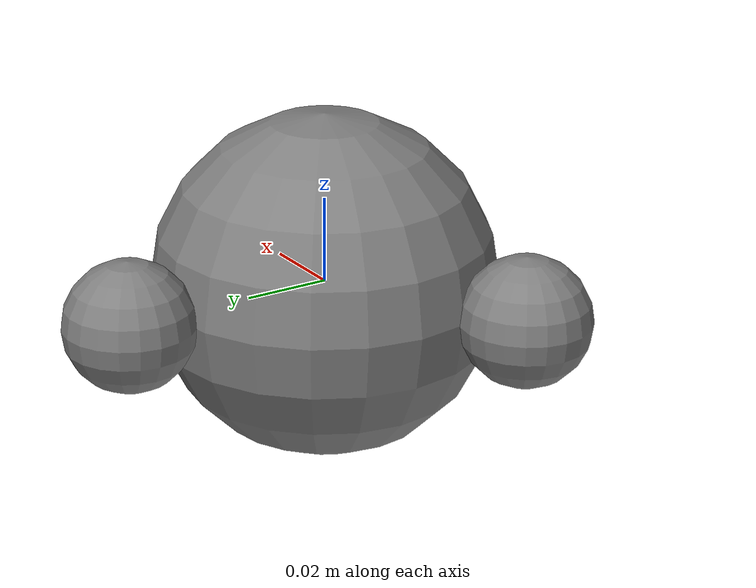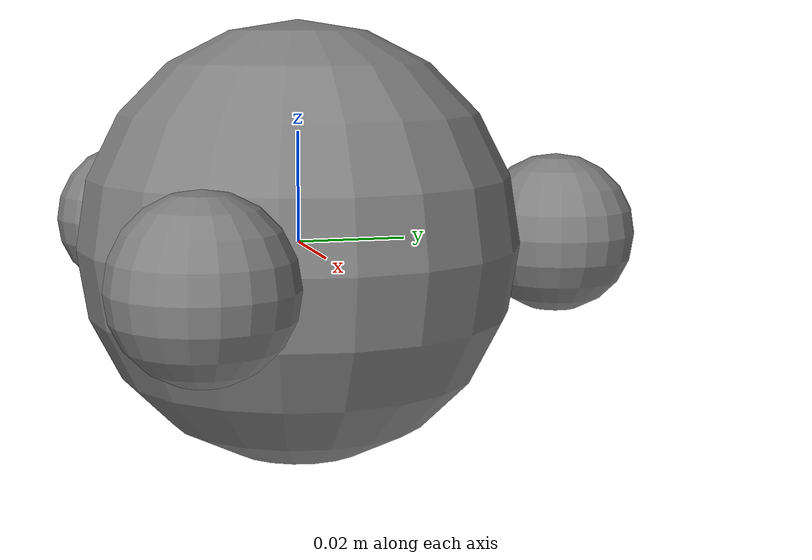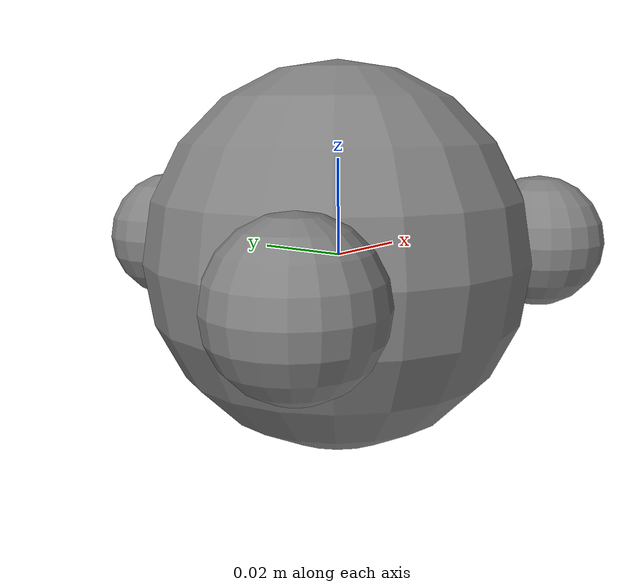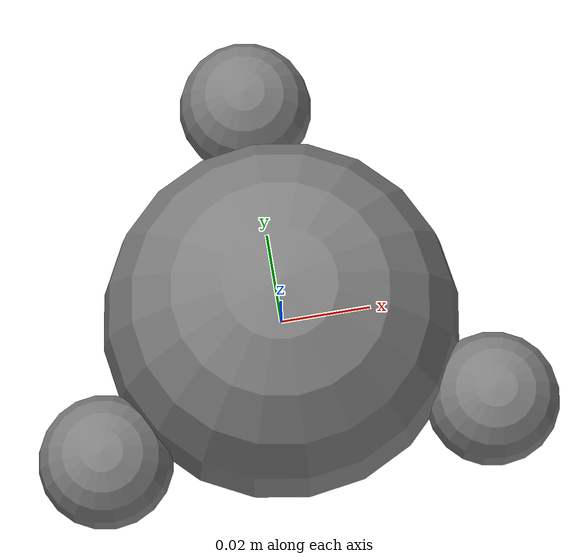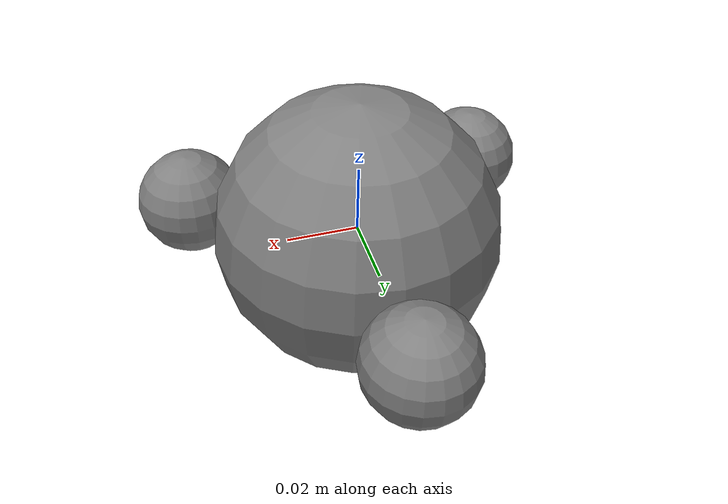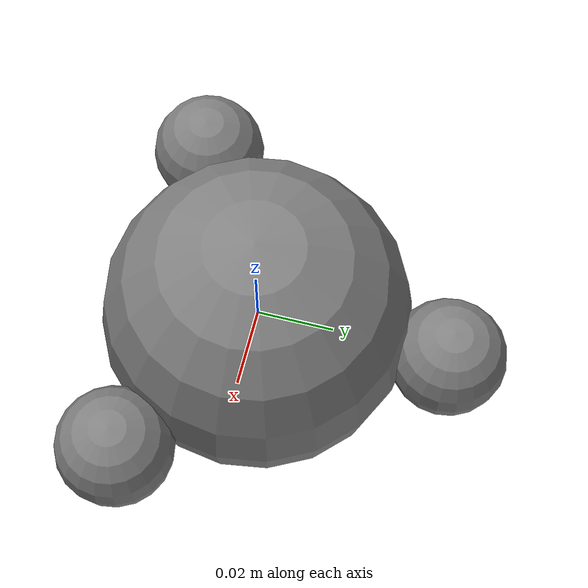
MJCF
<mujoco model="shape_sphere">
  <worldbody>
    <body name="shape">
      <geom name="ball" type="sphere" size="0.04 0 0" pos="0.0 0.0 0.0" mass="0.1" />
      <site name="attractor_site1" pos="0.0 0.05 0.0" size="0.015" />
      <site name="attractor_site2" pos="-0.0433 -0.025 0.0" size="0.015" />
      <site name="attractor_site3" pos="0.0433 -0.025 0.0" size="0.015" />
    </body>
  </worldbody>
</mujoco>
